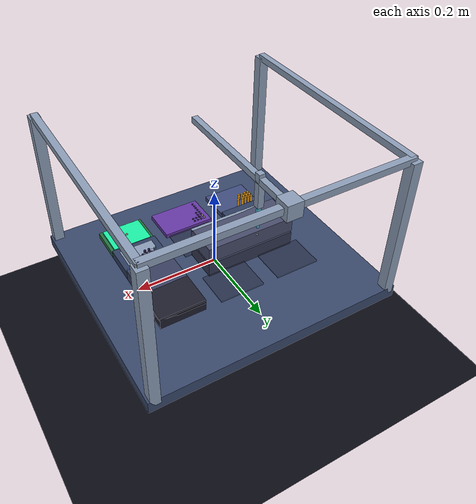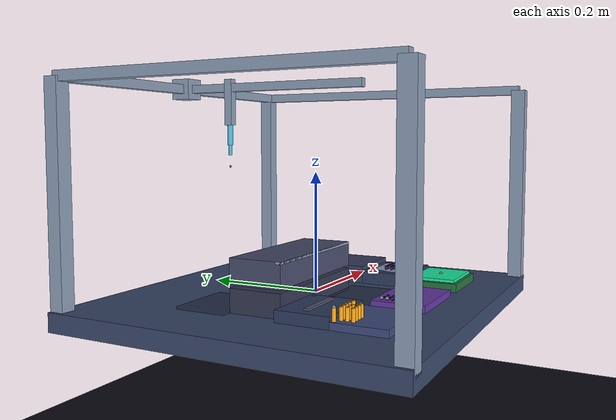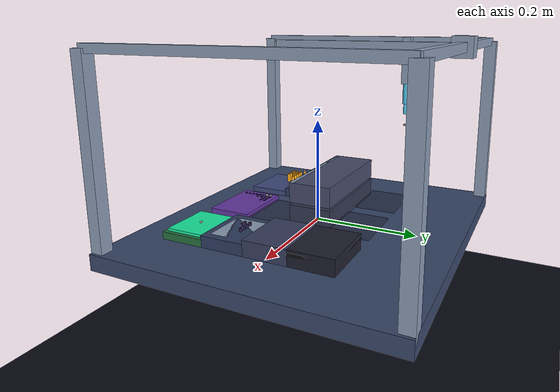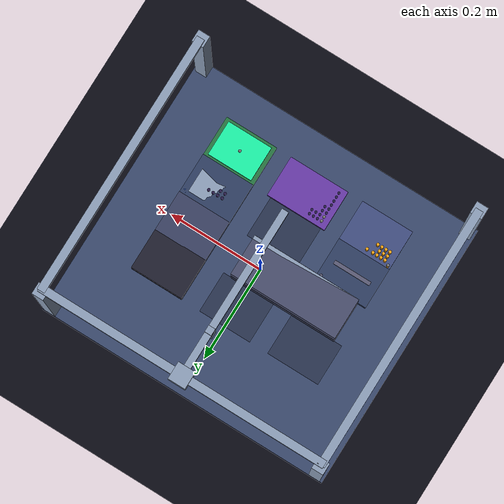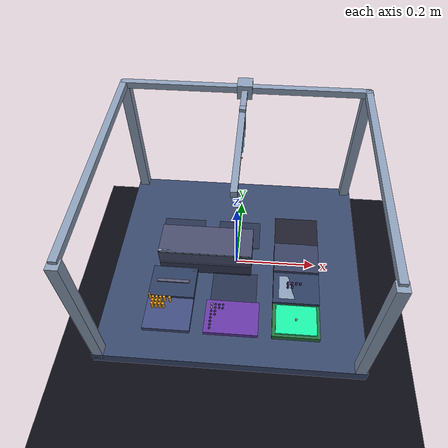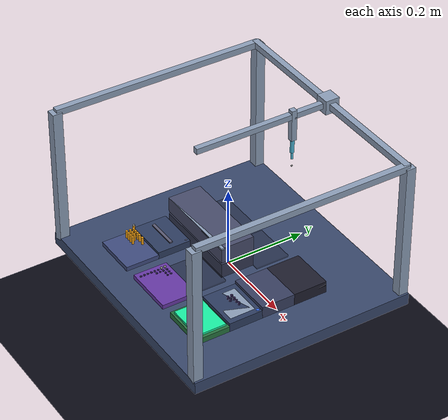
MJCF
<mujoco model="ot2_wetlab">
  <compiler angle="radian" autolimits="true"/>
  <option gravity="0 0 -9.81" timestep="0.002" integrator="RK4"/>

  <visual>
    <global offwidth="960" offheight="540"/>
    <headlight ambient=".45 .48 .58" diffuse=".9 .9 .95" specular=".3 .3 .3"/>
    <rgba haze=".07 .07 .12 1"/>
  </visual>

  <asset>
    <!-- Deck / structure -->
    <material name="deck"       rgba=".22 .28 .42 1"/>
    <material name="frame"      rgba=".55 .62 .72 1" specular=".8" shininess=".5"/>
    <material name="rack"       rgba=".25 .30 .50 1"/>
    <material name="plate"      rgba=".40 .22 .65 1"/>
    <material name="trough"     rgba=".15 .45 .25 1"/>
    <material name="pipette"    rgba=".30 .72 .85 1" specular=".9" shininess=".6"/>
    <material name="tip_idle"   rgba=".98 .65 .08 1"/>
    <material name="tip_on"     rgba=".98 .88 .15 1" emission=".25"/>
    <material name="reagent"    rgba=".10 .95 .65 .95" emission=".05"/>
    <material name="liquid"     rgba=".10 .72 .98 .92" emission=".05"/>
    <material name="well_e"     rgba=".15 .10 .28 1"/>
    <material name="well_f"     rgba=".08 .55 .98 .95" emission=".12"/>
    <!-- Module materials -->
    <material name="module_body" rgba=".18 .24 .38 1"/>
    <material name="mag_idle"   rgba=".35 .35 .45 1"/>
    <material name="mag_on"     rgba=".20 .60 1.0 1"  emission=".3"/>
    <material name="temp_cold"  rgba=".20 .40 .90 1"  emission=".1"/>
    <material name="temp_hot"   rgba=".95 .25 .10 1"  emission=".3"/>
    <material name="tc_body"    rgba=".20 .22 .32 1"/>
    <material name="tc_lid"     rgba=".28 .30 .42 1" specular=".5"/>
    <material name="hs_body"    rgba=".22 .25 .38 1"/>
    <material name="latch_open" rgba=".10 .90 .35 1"  emission=".2"/>
    <material name="latch_lock" rgba=".90 .20 .15 1"  emission=".15"/>
    <material name="trash"      rgba=".12 .12 .18 1"/>
  </asset>

  <worldbody>
    <!-- Background floor -->
    <geom type="plane" size="1.5 1.5 .01" rgba=".04 .04 .08 1" pos="0 0 -.23"/>

    <!-- ── DECK ─────────────────────────────────────────────────────────── -->
    <body name="deck" pos="0 0 0">
      <!-- Deck surface: 4 rows × 3 cols = 11 slots + trash -->
      <geom type="box" size=".312 .282 .015" pos="0 0 -.015" material="deck"/>

      <!-- Corner posts -->
      <geom type="box" size=".012 .012 .18" pos="-.295 -.27  .165" material="frame"/>
      <geom type="box" size=".012 .012 .18" pos="-.295  .27  .165" material="frame"/>
      <geom type="box" size=".012 .012 .18" pos=" .295 -.27  .165" material="frame"/>
      <geom type="box" size=".012 .012 .18" pos=" .295  .27  .165" material="frame"/>
      <!-- X rail (top, back) -->
      <geom type="box" size=".300 .008 .008" pos="0 .265 .345" material="frame"/>
      <!-- Y support rails (sides) -->
      <geom type="box" size=".008 .270 .008" pos="-.295 0 .345" material="frame"/>
      <geom type="box" size=".008 .270 .008" pos=" .295 0 .345" material="frame"/>

      <!-- ── ROW 1 ────────────────────────────────────────────────────── -->
      <!-- Slot 1: TIPRACK  (x=-.152, y=-.170) -->
      <body name="tiprack" pos="-.152 -.170 0">
        <geom type="box" size=".056 .043 .007" pos="0 0 .004" material="rack"/>
        <geom type="cylinder" size=".003 .011" pos="-.040  .032 .019" material="tip_idle"/>
        <geom type="cylinder" size=".003 .011" pos="-.040  .023 .019" material="tip_idle"/>
        <geom type="cylinder" size=".003 .011" pos="-.040  .014 .019" material="tip_idle"/>
        <geom type="cylinder" size=".003 .011" pos="-.031  .032 .019" material="tip_idle"/>
        <geom type="cylinder" size=".003 .011" pos="-.031  .023 .019" material="tip_idle"/>
        <geom type="cylinder" size=".003 .011" pos="-.031  .014 .019" material="tip_idle"/>
        <geom type="cylinder" size=".003 .011" pos="-.022  .032 .019" material="tip_idle"/>
        <geom type="cylinder" size=".003 .011" pos="-.022  .023 .019" material="tip_idle"/>
        <geom type="cylinder" size=".003 .011" pos="-.022  .014 .019" material="tip_idle"/>
        <geom type="cylinder" size=".003 .011" pos="-.013  .032 .019" material="tip_idle"/>
        <geom type="cylinder" size=".003 .011" pos="-.013  .014 .019" material="tip_idle"/>
        <geom type="cylinder" size=".003 .011" pos="  0    .032 .019" material="tip_idle"/>
        <!-- A1 tip (toggled via rgba) -->
        <geom name="tip_A1" type="cylinder" size=".003 .011" pos="-.050  .038 .019" material="tip_idle"/>
        <site name="site_tipA1" pos="-.050 .038 .030" size=".003"/>
      </body>

      <!-- Slot 2: 96-WELL PLATE  (x=0, y=-.170) -->
      <body name="plate" pos="0 -.170 0">
        <geom type="box" size=".064 .043 .007" pos="0 0 .004" material="plate"/>
        <geom name="w_A1" type="cylinder" size=".0027 .004" pos="-.050  .031 .008" material="well_e"/>
        <geom name="w_B1" type="cylinder" size=".0027 .004" pos="-.050  .022 .008" material="well_e"/>
        <geom name="w_C1" type="cylinder" size=".0027 .004" pos="-.050  .013 .008" material="well_e"/>
        <geom name="w_D1" type="cylinder" size=".0027 .004" pos="-.050  .004 .008" material="well_e"/>
        <geom name="w_E1" type="cylinder" size=".0027 .004" pos="-.050 -.005 .008" material="well_e"/>
        <geom name="w_F1" type="cylinder" size=".0027 .004" pos="-.050 -.014 .008" material="well_e"/>
        <geom name="w_G1" type="cylinder" size=".0027 .004" pos="-.050 -.023 .008" material="well_e"/>
        <geom name="w_H1" type="cylinder" size=".0027 .004" pos="-.050 -.032 .008" material="well_e"/>
        <geom type="cylinder" size=".0027 .004" pos="-.041 .031 .008" material="well_e"/>
        <geom type="cylinder" size=".0027 .004" pos="-.041 .022 .008" material="well_e"/>
        <geom type="cylinder" size=".0027 .004" pos="-.041 .013 .008" material="well_e"/>
        <geom type="cylinder" size=".0027 .004" pos="-.041 .004 .008" material="well_e"/>
        <geom type="cylinder" size=".0027 .004" pos="-.032 .031 .008" material="well_e"/>
        <geom type="cylinder" size=".0027 .004" pos="-.032 .022 .008" material="well_e"/>
        <geom type="cylinder" size=".0027 .004" pos="-.023 .031 .008" material="well_e"/>
        <geom type="cylinder" size=".0027 .004" pos="-.023 .022 .008" material="well_e"/>
        <site name="site_A1" pos="-.050  .031 .013" size=".003"/>
        <site name="site_B1" pos="-.050  .022 .013" size=".003"/>
      </body>

      <!-- Slot 3: TROUGH  (x=.152, y=-.170) -->
      <body name="trough" pos=".152 -.170 0">
        <geom type="box" size=".056 .043 .009" pos="0 0 .005" material="trough"/>
        <geom name="reagent_fill" type="box" size=".048 .037 .005" pos="0 0 .014" material="reagent"/>
        <site name="site_trough" pos="0 0 .019" size=".003"/>
      </body>

      <!-- ── ROW 2 ────────────────────────────────────────────────────── -->
      <!-- Slot 4: MAGNETIC MODULE  (x=-.152, y=-.085) -->
      <body name="mag_module" pos="-.152 -.085 0">
        <geom type="box" size=".056 .043 .012" pos="0 0 .006" material="module_body"/>
        <!-- Magnet bar: raised when engaged (z position driven from Python via mocap/geom) -->
        <geom name="mag_bar" type="box" size=".040 .004 .003" pos="0 0 .018" material="mag_idle"/>
        <!-- LED indicator -->
        <geom name="mag_led" type="cylinder" size=".003 .003" pos=".048 .035 .015" material="mag_idle"/>
      </body>

      <!-- Slot 5: EMPTY SLOT  (x=0, y=-.085) -->
      <body name="slot5" pos="0 -.085 0">
        <geom type="box" size=".056 .043 .003" pos="0 0 .001" rgba=".14 .16 .24 .5"/>
      </body>

      <!-- Slot 6: TEMPERATURE MODULE  (x=.152, y=-.085) -->
      <body name="temp_module" pos=".152 -.085 0">
        <geom type="box" size=".056 .043 .015" pos="0 0 .007" material="module_body"/>
        <!-- Aluminum block top -->
        <geom type="box" size=".042 .032 .004" pos="0 0 .018" material="frame"/>
        <!-- Temperature LED indicator (color changes cold→hot) -->
        <geom name="temp_led" type="cylinder" size=".004 .004" pos=".048 .035 .018" material="temp_cold"/>
        <!-- Well array (simplified) -->
        <geom type="cylinder" size=".003 .005" pos="-.020 .010 .023" material="well_e"/>
        <geom type="cylinder" size=".003 .005" pos="-.010 .010 .023" material="well_e"/>
        <geom type="cylinder" size=".003 .005" pos="0    .010 .023" material="well_e"/>
        <geom type="cylinder" size=".003 .005" pos=".010 .010 .023" material="well_e"/>
        <geom type="cylinder" size=".003 .005" pos="-.020 0    .023" material="well_e"/>
        <geom type="cylinder" size=".003 .005" pos="-.010 0    .023" material="well_e"/>
      </body>

      <!-- ── ROW 3 ────────────────────────────────────────────────────── -->
      <!-- Slots 7-8: THERMOCYCLER MODULE (spans 2 slots: x=-.152 and x=0, y=0) -->
      <body name="thermocycler" pos="-.076 0 0">
        <!-- Base body spanning two slots -->
        <geom type="box" size=".115 .043 .025" pos="0 0 .012" material="tc_body"/>
        <!-- PCR plate wells (simplified 8×3 representative) -->
        <geom type="cylinder" size=".002 .003" pos="-.080 .020 .028" material="well_e"/>
        <geom type="cylinder" size=".002 .003" pos="-.070 .020 .028" material="well_e"/>
        <geom type="cylinder" size=".002 .003" pos="-.060 .020 .028" material="well_e"/>
        <geom type="cylinder" size=".002 .003" pos="-.080 .010 .028" material="well_e"/>
        <geom type="cylinder" size=".002 .003" pos="-.070 .010 .028" material="well_e"/>
        <geom type="cylinder" size=".002 .003" pos="-.060 .010 .028" material="well_e"/>
        <geom type="cylinder" size=".002 .003" pos="-.080 0    .028" material="well_e"/>
        <geom type="cylinder" size=".002 .003" pos="-.070 0    .028" material="well_e"/>
        <!-- Lid — slides up when open (z driven from Python via joint or rgba trick) -->
        <body name="tc_lid_body" pos="0 0 0">
          <joint name="j_tc_lid" type="slide" axis="0 0 1" range="0 .06" damping="500"/>
          <geom name="tc_lid" type="box" size=".115 .043 .020" pos="0 0 .062" material="tc_lid"/>
          <!-- Lid hinge indicator strip -->
          <geom type="box" size=".115 .004 .002" pos="0 -.039 .080" material="frame"/>
        </body>
        <!-- Status LED -->
        <geom name="tc_led" type="cylinder" size=".003 .003" pos=".105 .035 .020" material="mag_idle"/>
      </body>

      <!-- Slot 9: HEATER-SHAKER  (x=.152, y=0) -->
      <body name="heater_shaker" pos=".152 0 0">
        <geom type="box" size=".056 .043 .020" pos="0 0 .010" material="hs_body"/>
        <!-- Plate platform -->
        <geom type="box" size=".042 .032 .003" pos="0 0 .023" material="frame"/>
        <!-- Latch indicator (front edge) -->
        <geom name="hs_latch" type="box" size=".040 .004 .003" pos="0 -.039 .015" material="latch_open"/>
        <!-- Status LED -->
        <geom name="hs_led"   type="cylinder" size=".003 .003" pos=".048 .035 .020" material="mag_idle"/>
      </body>

      <!-- ── ROW 4 ────────────────────────────────────────────────────── -->
      <!-- Slot 10: EMPTY  (x=-.152, y=.085) -->
      <body name="slot10" pos="-.152 .085 0">
        <geom type="box" size=".056 .043 .003" pos="0 0 .001" rgba=".14 .16 .24 .5"/>
      </body>

      <!-- Slot 11: EMPTY  (x=0, y=.085) -->
      <body name="slot11" pos="0 .085 0">
        <geom type="box" size=".056 .043 .003" pos="0 0 .001" rgba=".14 .16 .24 .5"/>
      </body>

      <!-- Trash bin  (x=.152, y=.085) -->
      <body name="trash" pos=".152 .085 0">
        <geom type="box" size=".056 .043 .020" pos="0 0 .010" material="trash"/>
        <geom type="box" size=".056 .043 .003" pos="0 0 .022" rgba=".05 .05 .08 1"/>
      </body>

      <!-- ── PIPETTE GANTRY (Cartesian XYZ) ────────────────────────────── -->
      <body name="x_carriage" pos="0 .265 .345">
        <inertial pos="0 0 0" mass=".5" diaginertia=".001 .001 .001"/>
        <joint name="j_x" type="slide" axis="1 0 0" range="-.29 .29" damping="80"/>
        <geom type="box" size=".018 .018 .018" material="frame"/>
        <geom type="box" size=".007 .175 .007" pos="0 -.175 0" material="frame"/>

        <body name="y_head" pos="0 -.095 0">
          <inertial pos="0 0 0" mass=".3" diaginertia=".0005 .0005 .0005"/>
          <joint name="j_y" type="slide" axis="0 1 0" range="-.24 .24" damping="80"/>

          <body name="z_column" pos="0 0 0">
            <inertial pos="0 0 -.08" mass=".2" diaginertia=".0003 .0003 .0003"/>
            <joint name="j_z" type="slide" axis="0 0 1" range="-.38 .02" damping="80"/>

            <geom type="box" size=".007 .007 .04" pos="0 0 -.025" material="frame"/>
            <geom type="cylinder" size=".005 .025" pos="0 0 -.075" material="pipette"/>
            <geom type="cylinder" fromto="0 0 -.100 0 0 -.118" size=".003" material="pipette"/>
            <!-- Detachable tip (rgba alpha toggled) -->
            <geom name="pip_tip" type="cylinder" fromto="0 0 -.118 0 0 -.138"
                  size=".0025" material="tip_idle" rgba=".95 .8 .1 0"/>
            <!-- Liquid indicator -->
            <geom name="pip_liquid" type="cylinder" size=".0022 .009" pos="0 0 -.126"
                  material="liquid" rgba=".0 .62 .92 0"/>

            <site name="pipette_tip" pos="0 0 -.138" size=".002"/>
          </body>
        </body>
      </body>
    </body>

    <!-- ── Cameras ───────────────────────────────────────────────────────── -->
    <camera name="iso"   pos=".55 -.65 .45" euler="65 0 38"/>
    <camera name="side"  pos="0   -.85 .25" euler="73 0 0"/>
    <camera name="top"   pos="0    0   .75" euler="0 0 0"/>
    <camera name="front" pos="0   -.75 .20" euler="80 0 0"/>
    <camera name="deck"  pos=".50 -.70 .40" euler="55 0 30"/>
  </worldbody>

  <!-- Position-controlled Cartesian actuators -->
  <actuator>
    <position name="act_x"      joint="j_x"      kp="8000" kv="400" ctrlrange="-.29 .29"/>
    <position name="act_y"      joint="j_y"      kp="8000" kv="400" ctrlrange="-.24 .24"/>
    <position name="act_z"      joint="j_z"      kp="8000" kv="400" ctrlrange="-.38 .02"/>
    <position name="act_tc_lid" joint="j_tc_lid" kp="2000" kv="200" ctrlrange="0 .06"/>
  </actuator>

</mujoco>
